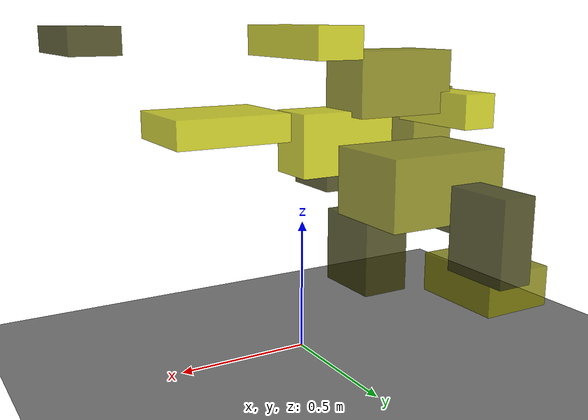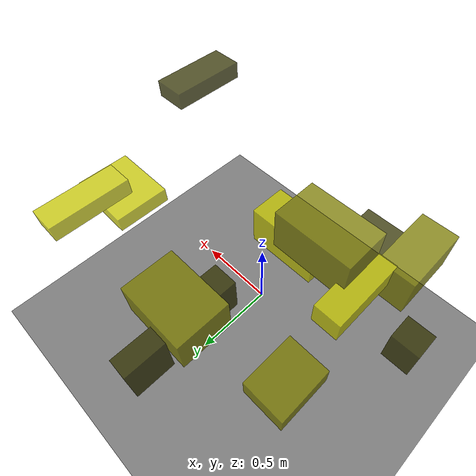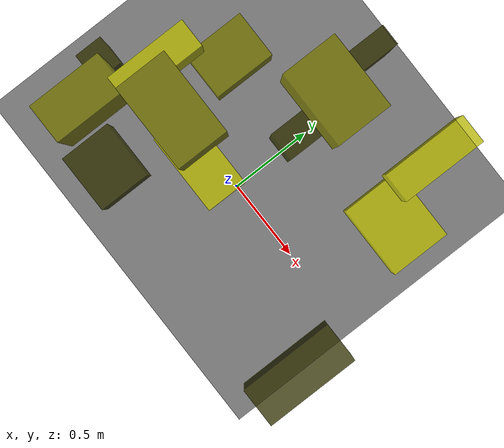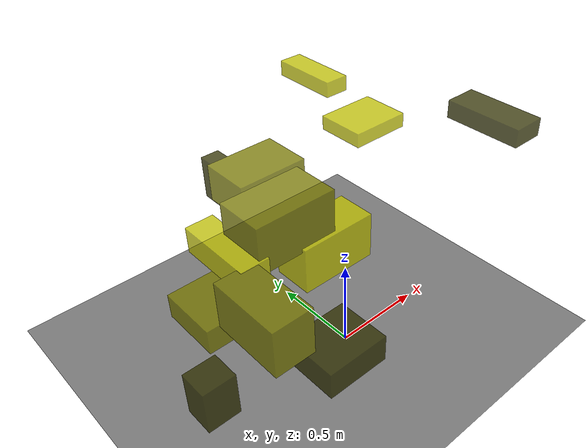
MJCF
<?xml version="1.0"?>
<mujoco model="obstacle_scene">
  <compiler angle="radian" coordinate="local"/>
  <option timestep="0.001" gravity="0 0 -9.81"/>

  <asset>
    <material name="obstacle_mat" rgba="0.8 0.8 0.0 0.8"/>
    <material name="ground_mat" rgba="0.5 0.5 0.5 1"/>
  </asset>

  <worldbody>
    <!-- Ground plane -->
    <geom name="ground" type="plane" size="3 3 0.1" material="ground_mat"/>

    <!-- Obstacles -->
    <body name="obstacle_0" pos="-0.105816 0.877289 0.647230">
      <geom name="obs_0" type="box" size="0.055293 0.108526 0.127602" rgba="0.2 0.2 0.0 0.8"/>
    </body>
    <body name="obstacle_1" pos="-0.703922 -0.295240 0.848606">
      <geom name="obs_1" type="box" size="0.097945 0.184425 0.118913" rgba="0.5 0.5 0.0 0.8"/>
    </body>
    <body name="obstacle_2" pos="-0.176179 -0.053314 0.790885">
      <geom name="obs_2" type="box" size="0.196225 0.099890 0.118800" rgba="0.8 0.8 0.0 0.8"/>
    </body>
    <body name="obstacle_3" pos="-0.906539 -0.149691 0.433484">
      <geom name="obs_3" type="box" size="0.081875 0.076145 0.117529" rgba="0.2 0.2 0.0 0.8"/>
    </body>
    <body name="obstacle_4" pos="-0.389812 -0.009864 1.009634">
      <geom name="obs_4" type="box" size="0.205068 0.123072 0.121079" rgba="0.5 0.5 0.0 0.8"/>
    </body>
    <body name="obstacle_5" pos="0.397775 0.674912 1.190236">
      <geom name="obs_5" type="box" size="0.064507 0.186779 0.041059" rgba="0.8 0.8 0.0 0.8"/>
    </body>
    <body name="obstacle_6" pos="-0.009481 0.404234 0.500120">
      <geom name="obs_6" type="box" size="0.077939 0.115283 0.122696" rgba="0.2 0.2 0.0 0.8"/>
    </body>
    <body name="obstacle_7" pos="-0.559805 0.393180 0.298106">
      <geom name="obs_7" type="box" size="0.137344 0.177655 0.073963" rgba="0.5 0.5 0.0 0.8"/>
    </body>
    <body name="obstacle_8" pos="0.547898 0.443765 0.951601">
      <geom name="obs_8" type="box" size="0.169512 0.138215 0.040088" rgba="0.8 0.8 0.0 0.8"/>
    </body>
    <body name="obstacle_9" pos="-0.451010 -0.433042 0.593187">
      <geom name="obs_9" type="box" size="0.154139 0.135037 0.068727" rgba="0.2 0.2 0.0 0.8"/>
    </body>
    <body name="obstacle_10" pos="-0.053850 0.618097 0.760814">
      <geom name="obs_10" type="box" size="0.202337 0.145650 0.106792" rgba="0.5 0.5 0.0 0.8"/>
    </body>
    <body name="obstacle_11" pos="-0.621785 0.058951 0.905531">
      <geom name="obs_11" type="box" size="0.070202 0.201248 0.065605" rgba="0.8 0.8 0.0 0.8"/>
    </body>
    <body name="obstacle_12" pos="0.736587 -0.249514 1.176358">
      <geom name="obs_12" type="box" size="0.086568 0.204679 0.046332" rgba="0.2 0.2 0.0 0.8"/>
    </body>
  </worldbody>
</mujoco>
